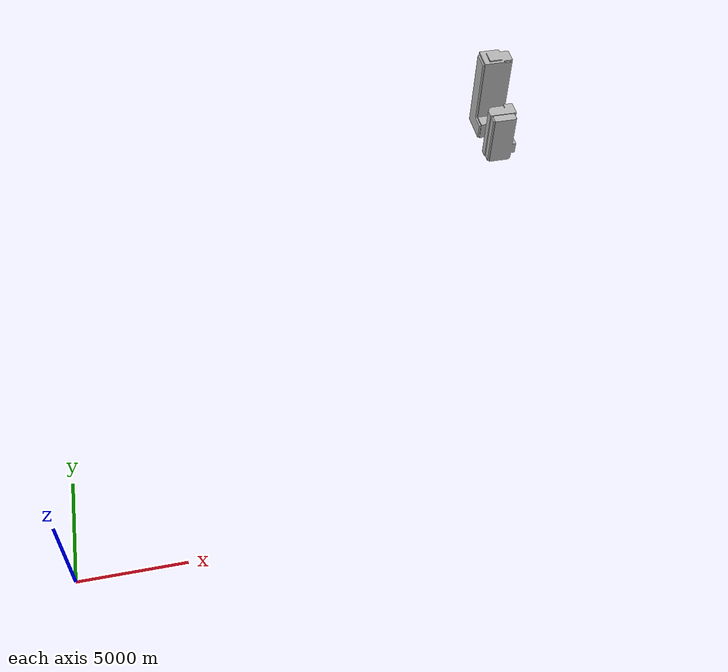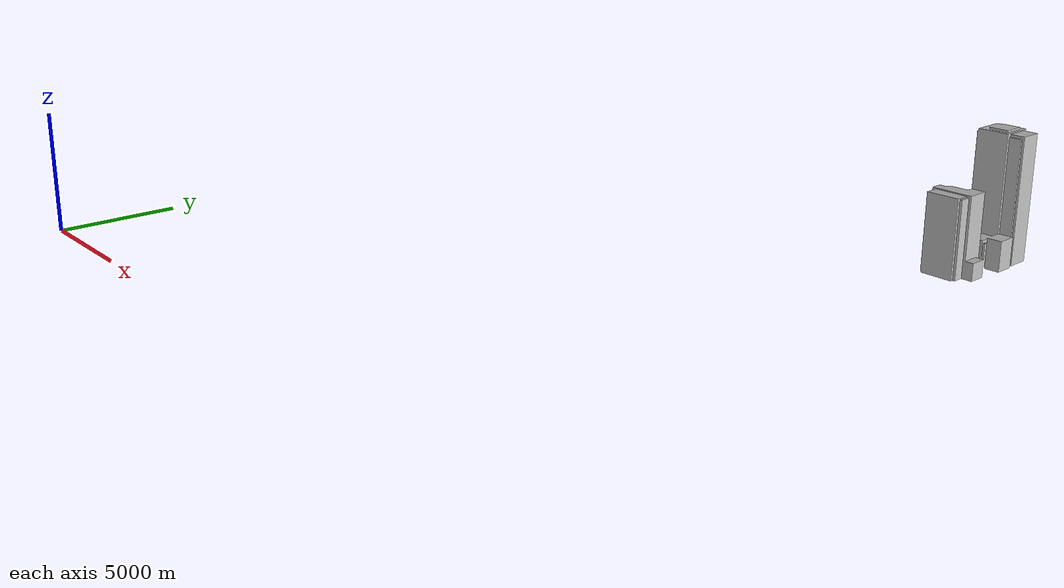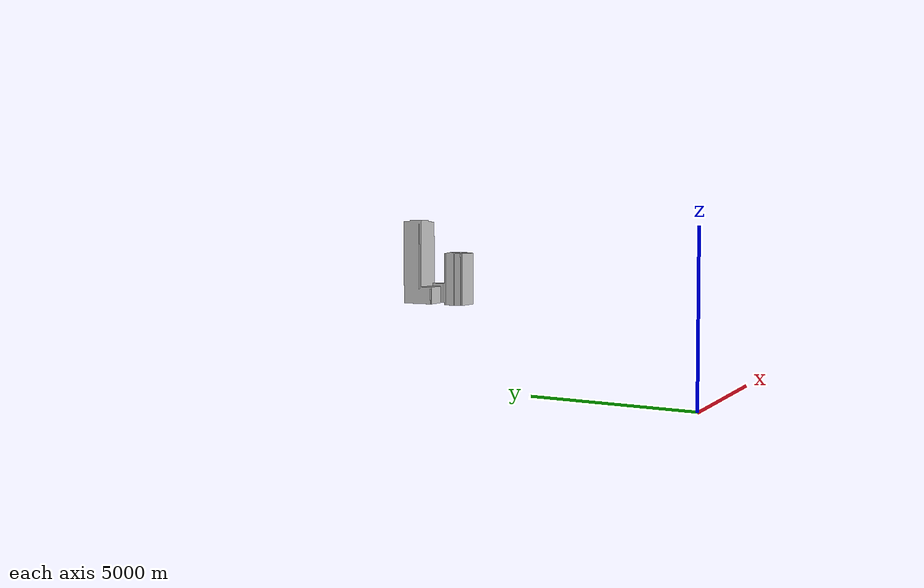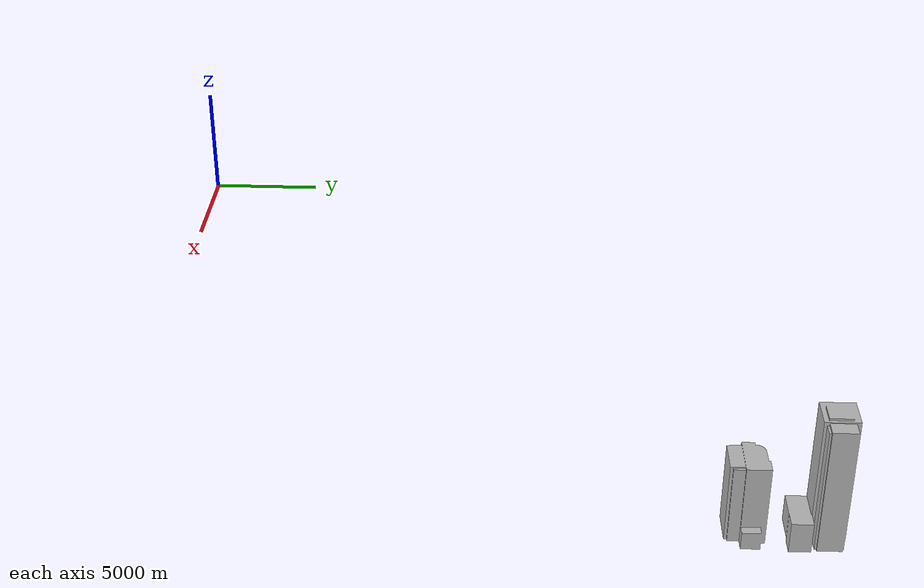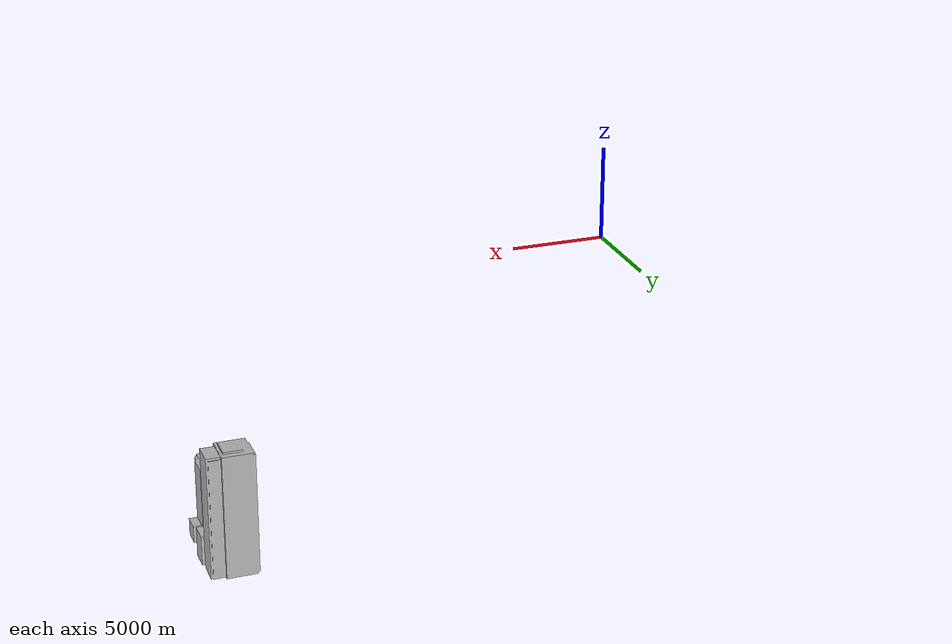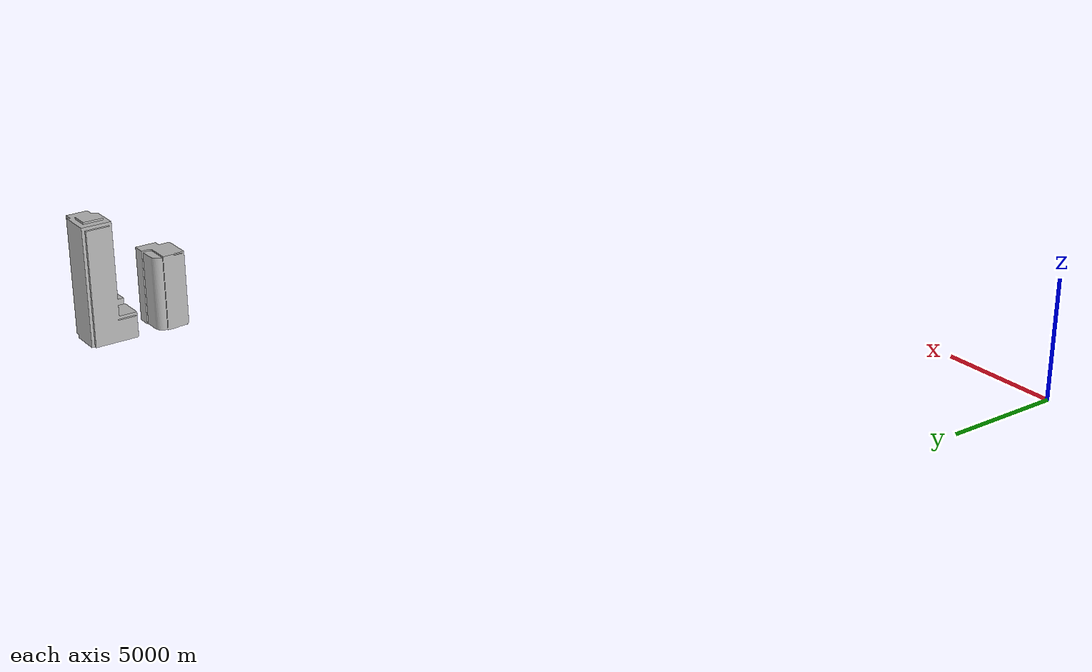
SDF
<?xml version='1.0'?>
<sdf version='1.6'>
  <model name='city'>
    <link name='link_1'>
      <pose frame=''>0 0 0 0 -0 0</pose>
      <gravity>1</gravity>
      <self_collide>0</self_collide>
      <kinematic>0</kinematic>
      <enable_wind>0</enable_wind>
      <visual name='visual'>
        <pose frame=''>0 0 0 0 -0 0</pose>
        <geometry>
          <mesh>
            <uri>/usr/share/gazebo-9/models/city/model.dae</uri>
            <scale>1 1 1</scale>
          </mesh>
        </geometry>
        <transparency>0</transparency>
        <cast_shadows>1</cast_shadows>
      </visual>
      <collision name='collision'>
        <laser_retro>0</laser_retro>
        <max_contacts>10</max_contacts>
        <pose frame=''>0 0 0 0 -0 0</pose>
        <geometry>
          <mesh>
            <uri>/usr/share/gazebo-9/models/city/model.dae</uri>
            <scale>1 1 1</scale>
          </mesh>
        </geometry>
      </collision>
    </link>
    <static>1</static>
    <allow_auto_disable>1</allow_auto_disable>
  </model>
</sdf>
